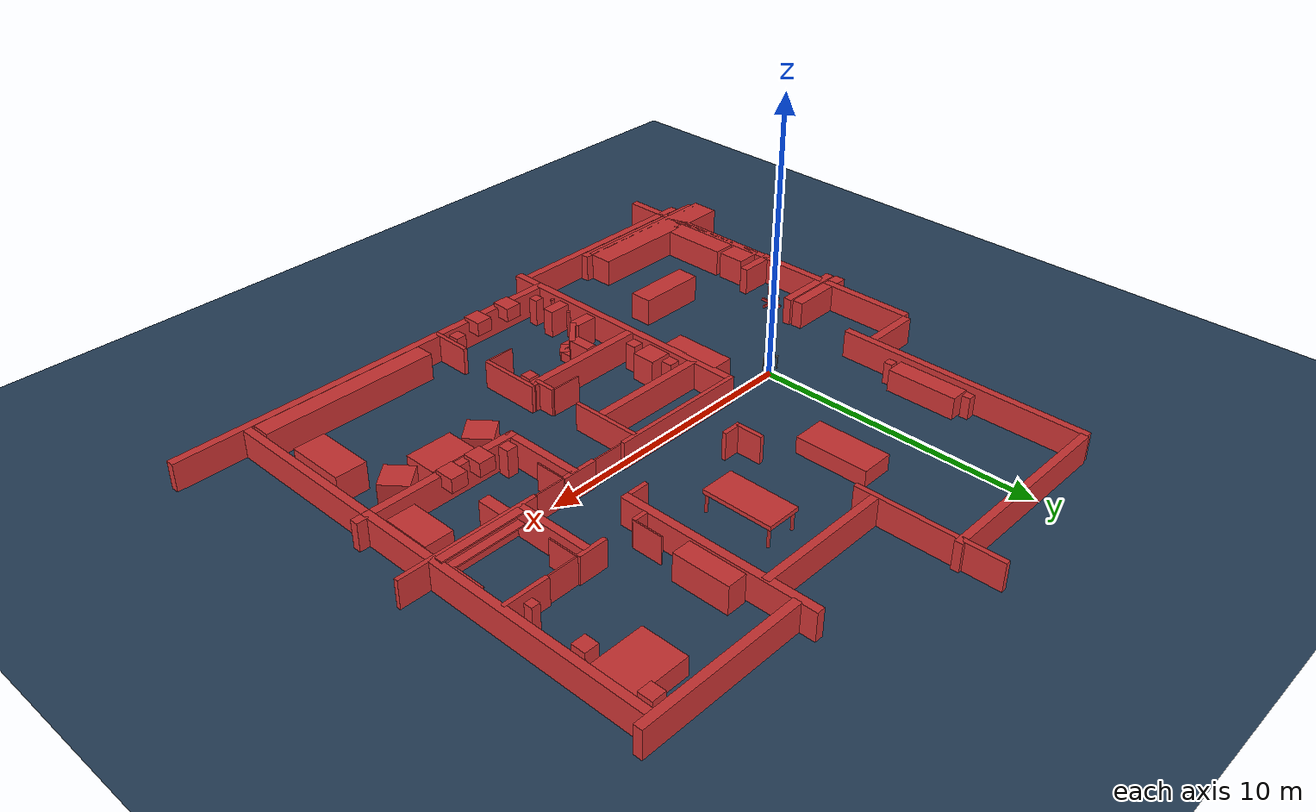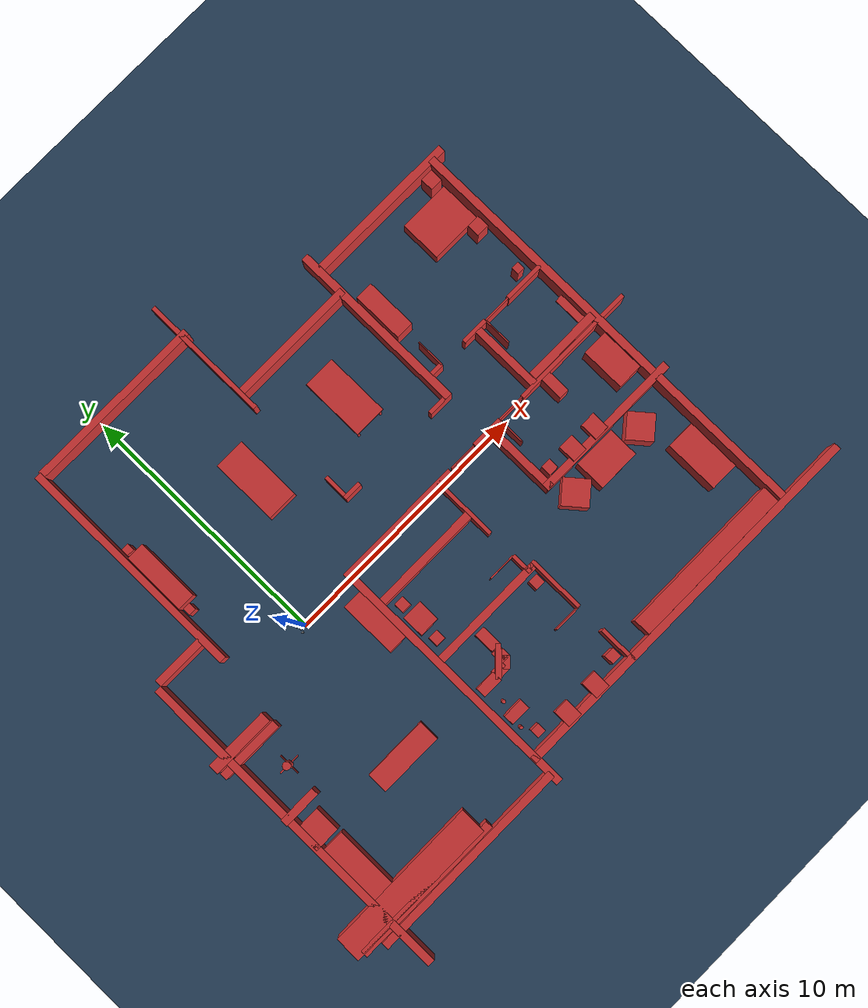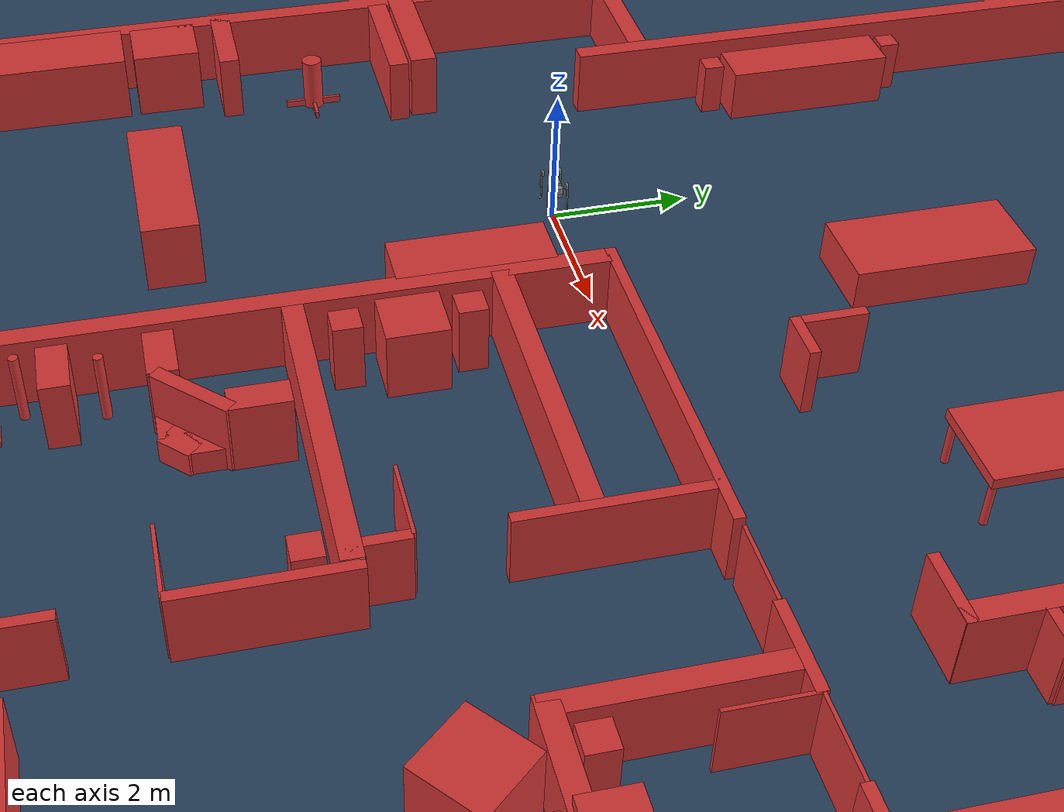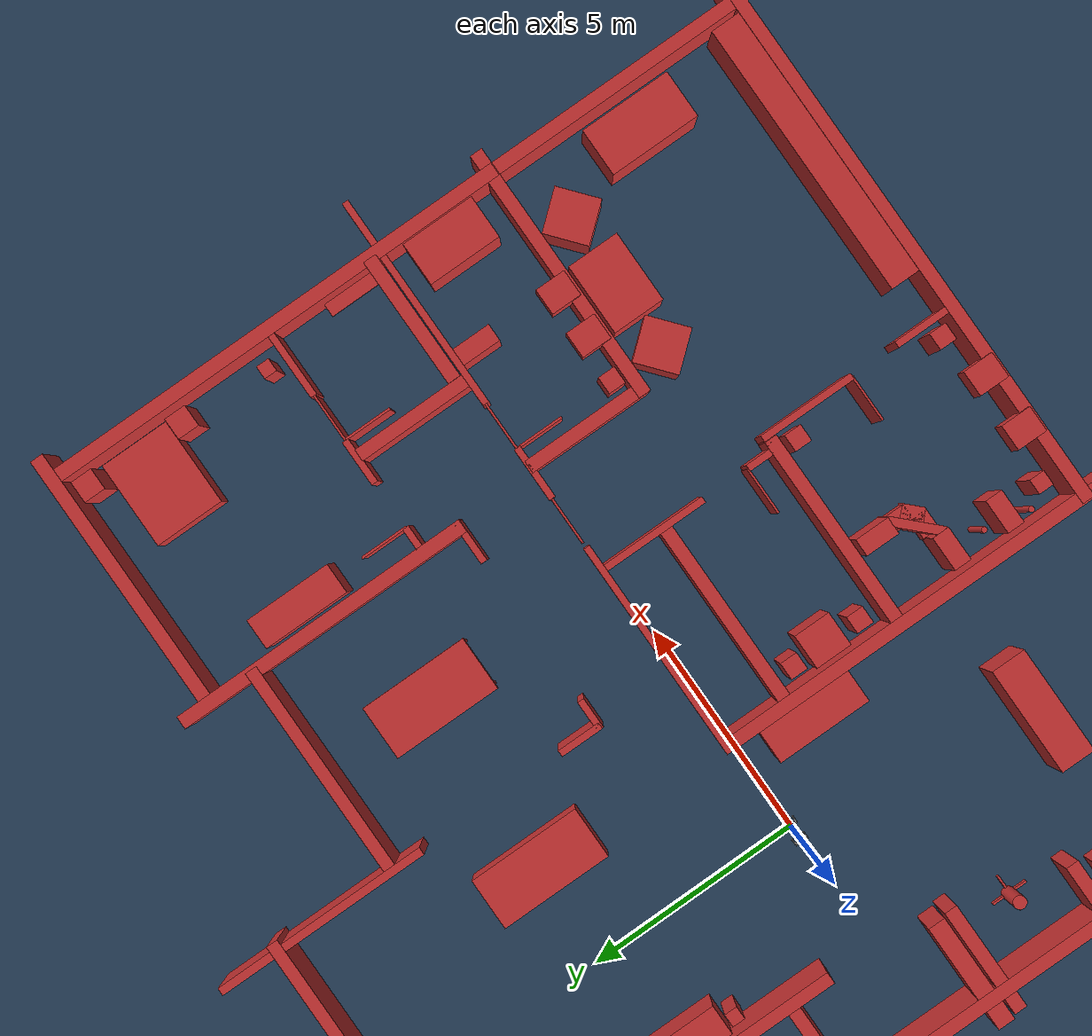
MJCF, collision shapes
<mujoco model="go2 scene">
  <include file="go2.xml" />

  <statistic center="0 0 0.1" extent="0.8" />

  <visual>
    <headlight diffuse="0.6 0.6 0.6" ambient="0.3 0.3 0.3" specular="0 0 0" />
    <rgba haze="0.15 0.25 0.35 1" />
    <global azimuth="-130" elevation="-20" />
    <map znear="0.01" zfar="100"/>
  </visual>

  <asset>
    <texture type="skybox" builtin="gradient" rgb1="0.3 0.5 0.7" rgb2="0 0 0" width="512" height="3072" />
    <texture type="2d" name="groundplane" builtin="checker" mark="edge" rgb1="0.2 0.3 0.4" rgb2="0.1 0.2 0.3" markrgb="0.8 0.8 0.8" width="300" height="300" />
    <material name="groundplane" texture="groundplane" texuniform="true" texrepeat="5 5" reflectance="0.2" />
  <hfield name="perlin_hfield" size="1.0 0.75 0.2 0.2" file="../height_field.png" /><hfield name="image_hfield" size="1.0 1.0 0.02 0.1" file="../unitree_hfield.png" /></asset>

  <worldbody>
    <light pos="0 0 1.5" dir="0 0 -1" directional="true" />
    <geom name="floor" pos="0 0.0 0.01" size="0 0 0.05" type="plane" material="groundplane" />
<geom name="ps_Cube" type="box" size="0.135 4.5 0.5" pos="-2.74 5.61 0.51" quat="1.0 0.0 0.0 0.0" rgba="0.8 0.2 0.2 1"/>
<geom name="ps_Cube3" type="box" size="0.135 3.5 0.5" pos="0.86 10.03 0.51" quat="0.707107 0.0 0.0 -0.707107" rgba="0.8 0.2 0.2 1"/>
<geom name="ps_Cube4" type="box" size="0.09 2.5 0.5" pos="4.15 8.95 0.51" quat="0.0 0.0 0.0 -1.0" rgba="0.8 0.2 0.2 1"/>
<geom name="ps_Cube5" type="box" size="0.135 2.5 0.5" pos="6.66 7.19 0.51" quat="0.707107 0.0 0.0 -0.707107" rgba="0.8 0.2 0.2 1"/>
<geom name="ps_Cube6" type="box" size="0.15 3.5 0.5" pos="9.09 5.47 0.51" quat="0.0 0.0 0.0 -1.0" rgba="0.8 0.2 0.2 1"/>
<geom name="ps_Cube7" type="box" size="0.15 3.0 0.5" pos="12.19 8.29 0.51" quat="0.707107 0.0 0.0 0.707107" rgba="0.8 0.2 0.2 1"/>
<geom name="ps_Cube8" type="box" size="0.15 5.5 0.5" pos="14.65 2.77 0.51" quat="1.0 0.0 0.0 0.0" rgba="0.8 0.2 0.2 1"/>
<geom name="ps_Cube9" type="box" size="0.075 0.5 0.5" pos="8.73 2.04 0.51" quat="0.707107 0.0 0.0 -0.707107" rgba="0.8 0.2 0.2 1"/>
<geom name="ps_Cube10" type="box" size="0.075 0.25 0.5" pos="9.47 2.95 0.51" quat="0.707107 0.0 0.0 -0.707107" rgba="0.8 0.2 0.2 1"/>
<geom name="ps_Cube11" type="box" size="0.075 0.525 0.5" pos="11.35 2.94 0.51" quat="0.707107 0.0 0.0 -0.707107" rgba="0.8 0.2 0.2 1"/>
<geom name="ps_Cube12" type="box" size="0.075 0.8 0.5" pos="13.79 2.94 0.51" quat="0.707107 0.0 0.0 -0.707107" rgba="0.8 0.2 0.2 1"/>
<geom name="ps_Cube13" type="box" size="0.075 2.5 0.5" pos="13.35 0.16 0.51" quat="0.707107 0.0 0.0 -0.707107" rgba="0.8 0.2 0.2 1"/>
<geom name="ps_Cube14" type="box" size="0.14 1.35 0.5" pos="11.47 1.54 0.51" quat="0.0 0.0 0.0 -1.0" rgba="0.8 0.2 0.2 1"/>
<geom name="ps_Cube15" type="box" size="0.145 3.0 0.5" pos="12.15 -2.6 0.51" quat="0.707107 0.0 0.0 -0.707107" rgba="0.8 0.2 0.2 1"/>
<geom name="ps_Cube16" type="box" size="0.145 7.5 0.5" pos="9.71 -8.76 0.51" quat="0.707107 0.0 0.0 -0.707107" rgba="0.8 0.2 0.2 1"/>
<geom name="ps_Cube17" type="box" size="0.145 3.0 0.5" pos="14.65 -5.7 0.51" quat="0.0 0.0 0.0 -1.0" rgba="0.8 0.2 0.2 1"/>
<geom name="ps_Cube18" type="box" size="0.075 0.625 0.5" pos="9.12 0.16 0.51" quat="0.707107 0.0 0.0 -0.707107" rgba="0.8 0.2 0.2 1"/>
<geom name="ps_Cube19" type="box" size="0.145 1.45 0.5" pos="9.29 -1.26 0.51" quat="0.0 0.0 0.0 -1.0" rgba="0.8 0.2 0.2 1"/>
<geom name="ps_Cube20" type="box" size="0.025 0.55 0.5" pos="9.74 -0.39 0.51" quat="0.0 0.0 0.0 -1.0" rgba="0.8 0.2 0.2 1"/>
<geom name="ps_Cube21" type="box" size="0.025 0.55 0.5" pos="9.725 3.48 0.51" quat="0.0 0.0 0.0 -1.0" rgba="0.8 0.2 0.2 1"/>
<geom name="ps_Cube22" type="box" size="0.025 0.55 0.5" pos="7.94 0.17 0.51" quat="0.707107 0.0 0.0 -0.707107" rgba="0.8 0.2 0.2 1"/>
<geom name="ps_Cube23" type="box" size="0.075 2.55 0.5" pos="4.73 0.16 0.51" quat="0.707107 0.0 0.0 -0.707107" rgba="0.8 0.2 0.2 1"/>
<geom name="ps_Cube24" type="box" size="0.145 5.0 0.5" pos="2.32 -4.89 0.51" quat="1.0 0.0 0.0 -0.0" rgba="0.8 0.2 0.2 1"/>
<geom name="ps_Cube25" type="box" size="0.145 6.5 0.5" pos="-4.98 -4.51 0.51" quat="1.0 0.0 0.0 -0.0" rgba="0.8 0.2 0.2 1"/>
<geom name="ps_Cube26" type="box" size="0.145 1.0 0.5" pos="-3.84 2.11 0.51" quat="0.707107 0.0 0.0 -0.707107" rgba="0.8 0.2 0.2 1"/>
<geom name="ps_Cube27" type="box" size="0.145 4.0 0.5" pos="-1.68 -9.51 0.51" quat="0.707107 0.0 0.0 0.707107" rgba="0.8 0.2 0.2 1"/>
<geom name="ps_Cube28" type="box" size="0.145 3.0 0.5" pos="-3.35 -9.19 0.51" quat="0.707107 0.0 0.0 0.707107" rgba="0.8 0.2 0.2 1"/>
<geom name="ps_Cube29" type="box" size="0.5 3.0 0.5" pos="-3.63 -8.71 0.51" quat="0.707107 0.0 0.0 0.707107" rgba="0.8 0.2 0.2 1"/>
<geom name="ps_Cube30" type="box" size="0.5 1.5 0.5" pos="-4.51 -7.31 0.51" quat="1.0 0.0 0.0 -0.0" rgba="0.8 0.2 0.2 1"/>
<geom name="ps_Cube31" type="box" size="0.5 0.5 0.5" pos="-4.53 -5.17 0.51" quat="1.0 0.0 0.0 -0.0" rgba="0.8 0.2 0.2 1"/>
<geom name="ps_Cube32" type="box" size="0.75 0.15 0.5" pos="-4.42 -4.23 0.51" quat="1.0 0.0 0.0 -0.0" rgba="0.8 0.2 0.2 1"/>
<geom name="ps_Cube33" type="box" size="1.25 0.15 0.5" pos="-4.25 -1.68 0.51" quat="1.0 0.0 0.0 -0.0" rgba="0.8 0.2 0.2 1"/>
<geom name="ps_Cube34" type="box" size="1.25 0.2 0.5" pos="-4.32 -1.28 0.51" quat="1.0 0.0 0.0 -0.0" rgba="0.8 0.2 0.2 1"/>
<geom name="ps_Cube35" type="box" size="1.25 0.4 0.5" pos="-0.78 -5.54 0.51" quat="1.0 0.0 0.0 -0.0" rgba="0.8 0.2 0.2 1"/>
<geom name="ps_Cube36" type="box" size="1.1 0.4 0.5" pos="1.82 -1.66 0.51" quat="0.707107 0.0 0.0 0.707107" rgba="0.8 0.2 0.2 1"/>
<geom name="ps_Cube37" type="box" size="0.075 1.25 0.5" pos="6.71 -1.1 0.51" quat="0.0 0.0 0.0 -1.0" rgba="0.8 0.2 0.2 1"/>
<geom name="ps_Cube38" type="box" size="0.075 0.4 0.5" pos="6.71 -3.85 0.51" quat="0.0 0.0 0.0 -1.0" rgba="0.8 0.2 0.2 1"/>
<geom name="ps_Cube39" type="box" size="0.075 1.115 0.5" pos="7.03 -5.15 0.51" quat="0.0 0.0 0.0 -1.0" rgba="0.8 0.2 0.2 1"/>
<geom name="ps_Cube40" type="box" size="0.1 0.1 0.5" pos="6.87 -4.13 0.51" quat="0.0 0.0 0.0 -1.0" rgba="0.8 0.2 0.2 1"/>
<geom name="ps_Cube41" type="box" size="0.145 2.25 0.5" pos="4.69 -4.17 0.51" quat="0.707107 0.0 0.0 -0.707107" rgba="0.8 0.2 0.2 1"/>
<geom name="ps_Cube42" type="box" size="0.025 0.55 0.5" pos="6.16 -3.44 0.51" quat="0.707107 0.0 0.0 -0.707107" rgba="0.8 0.2 0.2 1"/>
<geom name="ps_Cube43" type="box" size="0.025 0.55 0.5" pos="6.49 -6.26 0.51" quat="0.707107 0.0 0.0 -0.707107" rgba="0.8 0.2 0.2 1"/>
<geom name="ps_Cube44" type="box" size="0.145 2.15 0.5" pos="4.49 -1.37 0.51" quat="0.707107 0.0 0.0 -0.707107" rgba="0.8 0.2 0.2 1"/>
<geom name="ps_Cube45" type="box" size="0.025 0.55 0.5" pos="11.89 2.37 0.51" quat="0.0 0.0 0.0 -1.0" rgba="0.8 0.2 0.2 1"/>
<geom name="ps_Cube46" type="box" size="0.15 1.5 0.025" pos="13.11 0.41 0.61" quat="0.707107 0.0 0.0 -0.707107" rgba="0.8 0.2 0.2 1"/>
<geom name="ps_Cube47" type="box" size="0.15 1.5 0.025" pos="13.11 0.41 1.05" quat="0.707107 0.0 0.0 -0.707107" rgba="0.8 0.2 0.2 1"/>
<geom name="ps_Cube48" type="box" size="0.15 0.6 0.025" pos="14.31 1.12 0.61" quat="1.0 0.0 0.0 -0.0" rgba="0.8 0.2 0.2 1"/>
<geom name="ps_Cube52" type="box" size="0.35 1.25 0.4" pos="-2.25 4.68 0.39" quat="1.0 0.0 0.0 0.0" rgba="0.8 0.2 0.2 1"/>
<geom name="ps_Cube53" type="box" size="0.15 0.15 0.4" pos="-2.39 6.14 0.39" quat="1.0 0.0 0.0 0.0" rgba="0.8 0.2 0.2 1"/>
<geom name="ps_Cube54" type="box" size="0.15 0.15 0.4" pos="-2.34 3.19 0.39" quat="1.0 0.0 0.0 0.0" rgba="0.8 0.2 0.2 1"/>
<geom name="ps_Cube59" type="box" size="0.6 1.3 0.3" pos="2.4 4.74 0.32" quat="1.0 0.0 0.0 0.0" rgba="0.8 0.2 0.2 1"/>
<geom name="ps_Cube60" type="box" size="0.075 0.5 0.5" pos="4.15 2.51 0.51" quat="1.0 0.0 0.0 0.0" rgba="0.8 0.2 0.2 1"/>
<geom name="ps_Cube61" type="box" size="0.075 0.36 0.5" pos="4.44 2.05 0.51" quat="0.707107 0.0 0.0 0.707107" rgba="0.8 0.2 0.2 1"/>
<geom name="ps_Cube62" type="box" size="0.625 1.25 0.075" pos="6.58 4.55 0.78" quat="1.0 0.0 0.0 0.0" rgba="0.8 0.2 0.2 1"/>
<geom name="ps_Cube69" type="box" size="0.35 1.0 0.5" pos="9.68 5.68 0.51" quat="0.0 0.0 0.0 -1.0" rgba="0.8 0.2 0.2 1"/>
<geom name="ps_Cube70" type="box" size="0.25 0.25 0.5" pos="14.09 5.45 0.51" quat="0.0 0.0 0.0 -1.0" rgba="0.8 0.2 0.2 1"/>
<geom name="ps_Cube71" type="box" size="0.25 0.25 0.5" pos="14.13 7.75 0.51" quat="0.0 0.0 0.0 -1.0" rgba="0.8 0.2 0.2 1"/>
<geom name="ps_Cube72" type="box" size="0.15 0.15 0.5" pos="13.99 3.41 0.51" quat="0.0 0.0 0.0 -1.0" rgba="0.8 0.2 0.2 1"/>
<geom name="ps_Cube73" type="box" size="1.0 0.8 0.35" pos="13.36 6.57 0.3" quat="0.0 0.0 0.0 -1.0" rgba="0.8 0.2 0.2 1"/>
<geom name="ps_Cube74" type="box" size="0.5 0.85 0.5" pos="13.97 -1.16 0.51" quat="0.0 0.0 0.0 -1.0" rgba="0.8 0.2 0.2 1"/>
<geom name="ps_Cube75" type="box" size="0.2 0.45 0.5" pos="11.94 -0.36 0.51" quat="0.0 0.0 0.0 -1.0" rgba="0.8 0.2 0.2 1"/>
<geom name="ps_Cube76" type="box" size="0.3 0.35 0.25" pos="11.84 -2.33 0.89" quat="0.0 0.0 0.0 -1.0" rgba="0.8 0.2 0.2 1"/>
<geom name="ps_Cube77" type="box" size="0.3 0.35 0.25" pos="10.77 -2.33 0.89" quat="0.0 0.0 0.0 -1.0" rgba="0.8 0.2 0.2 1"/>
<geom name="ps_Cube78" type="box" size="0.2 0.2 0.5" pos="9.77 -2.21 0.5" quat="0.0 0.0 0.0 -1.0" rgba="0.8 0.2 0.2 1"/>
<geom name="ps_Cube79" type="box" size="0.5 0.5 0.5" pos="9.77 -3.46 0.5" quat="0.90559 0.0 0.0 -0.424155" rgba="0.8 0.2 0.2 1"/>
<geom name="ps_Cube80" type="box" size="0.5 0.5 0.5" pos="12.97 -3.46 0.5" quat="0.90559 0.0 0.0 -0.424155" rgba="0.8 0.2 0.2 1"/>
<geom name="ps_Cube81" type="box" size="0.825 0.6 0.5" pos="11.34 -3.41 0.5" quat="1.0 0.0 0.0 0.0" rgba="0.8 0.2 0.2 1"/>
<geom name="ps_Cube82" type="box" size="0.55 1.05 0.5" pos="13.72 -5.68 0.5" quat="1.0 0.0 0.0 0.0" rgba="0.8 0.2 0.2 1"/>
<geom name="ps_Cube83" type="box" size="3.2 0.35 0.5" pos="11.21 -8.29 0.5" quat="1.0 0.0 0.0 0.0" rgba="0.8 0.2 0.2 1"/>
<geom name="ps_Cube84" type="box" size="0.075 0.75 0.5" pos="7.03 -8.12 0.51" quat="0.0 0.0 0.0 -1.0" rgba="0.8 0.2 0.2 1"/>
<geom name="ps_Cube85" type="box" size="0.3 0.35 0.25" pos="5.51 -8.48 0.89" quat="0.0 0.0 0.0 -1.0" rgba="0.8 0.2 0.2 1"/>
<geom name="ps_Cube86" type="box" size="0.3 0.35 0.25" pos="4.17 -8.48 0.89" quat="0.0 0.0 0.0 -1.0" rgba="0.8 0.2 0.2 1"/>
<geom name="ps_Cube87" type="box" size="0.2 0.2 0.5" pos="2.88 -1.91 0.5" quat="0.0 0.0 0.0 -1.0" rgba="0.8 0.2 0.2 1"/>
<geom name="ps_Cube88" type="box" size="0.2 0.2 0.5" pos="2.88 -3.55 0.5" quat="0.0 0.0 0.0 -1.0" rgba="0.8 0.2 0.2 1"/>
<geom name="ps_Cube89" type="box" size="0.4 0.425 0.5" pos="2.97 -2.69 0.5" quat="0.0 0.0 0.0 -1.0" rgba="0.8 0.2 0.2 1"/>
<geom name="ps_Cube90" type="box" size="0.2 0.2 0.5" pos="6.63 -8.24 0.5" quat="0.0 0.0 0.0 -1.0" rgba="0.8 0.2 0.2 1"/>
<geom name="ps_Cube91" type="box" size="0.2 0.2 0.5" pos="6.63 -4.64 0.5" quat="0.0 0.0 0.0 -1.0" rgba="0.8 0.2 0.2 1"/>
<geom name="ps_Cube92" type="box" size="0.175 0.175 0.5" pos="3.05 -8.18 0.5" quat="0.0 0.0 0.0 -1.0" rgba="0.8 0.2 0.2 1"/>
<geom name="ps_Cube93" type="box" size="0.4 0.2 0.5" pos="2.99 -7.23 0.5" quat="0.0 0.0 0.0 -1.0" rgba="0.8 0.2 0.2 1"/>
<geom name="ps_Cylinder"  type="cylinder" size="0.065 0.5" pos="2.72 -7.7 0.5" rgba="0.8 0.2 0.2 1"/>
<geom name="ps_Cylinder2"  type="cylinder" size="0.065 0.5" pos="2.93 -6.67 0.5" rgba="0.8 0.2 0.2 1"/>
<geom name="ps_Cube94" type="box" size="0.4 0.2 0.5" pos="2.99 -5.91 0.5" quat="0.0 0.0 0.0 -1.0" rgba="0.8 0.2 0.2 1"/>
<geom name="ps_Cube95" type="box" size="0.4 0.2 0.5" pos="4.06 -4.81 0.5" quat="0.707107 0.0 0.0 -0.707107" rgba="0.8 0.2 0.2 1"/>
<geom name="ps_Cube96" type="box" size="0.1 0.6 0.5" pos="3.78 -5.59 0.5" quat="0.92388 0.0 0.0 -0.382683" rgba="0.8 0.2 0.2 1"/>
<geom name="ps_Cube97" type="box" size="0.2 0.25 0.2" pos="3.93 -5.78 0.14" quat="0.92388 0.0 0.0 -0.382683" rgba="0.8 0.2 0.2 1"/>
<geom name="ps_Cube98" type="box" size="0.2 0.25 0.2" pos="4.02 -5.51 0.14" quat="1.0 0.0 0.0 0.0" rgba="0.8 0.2 0.2 1"/>
<geom name="ps_Cube99" type="box" size="0.2 0.25 0.2" pos="3.62 -5.88 0.14" quat="0.707107 0.0 0.0 0.707107" rgba="0.8 0.2 0.2 1"/>
<geom name="ps_Cylinder27"  type="cylinder" size="0.05 0.35" pos="7.11 3.38 0.39" rgba="0.8 0.2 0.2 1"/>
<geom name="ps_Cylinder28"  type="cylinder" size="0.05 0.35" pos="6.04 3.38 0.39" rgba="0.8 0.2 0.2 1"/>
<geom name="ps_Cylinder29"  type="cylinder" size="0.05 0.35" pos="6.04 5.69 0.39" rgba="0.8 0.2 0.2 1"/>
<geom name="ps_Cylinder30"  type="cylinder" size="0.05 0.35" pos="7.12 5.69 0.39" rgba="0.8 0.2 0.2 1"/>
<geom name="ps_Cylinder31"  type="cylinder" size="0.15 0.4" pos="-3.77 -2.94 0.4" rgba="0.8 0.2 0.2 1"/>
<geom name="ps_Cube100" type="box" size="0.425 0.025 0.05" pos="-3.75 -2.95 0.06" quat="1.0 0.0 0.0 -0.0" rgba="0.8 0.2 0.2 1"/>
<geom name="ps_Cube101" type="box" size="0.425 0.025 0.05" pos="-3.75 -2.95 0.06" quat="0.707107 0.0 0.0 -0.707107" rgba="0.8 0.2 0.2 1"/>
<geom name="ps_Cube49" type="box" size="0.025 0.55 0.5" pos="10.3 0.17 0.51" quat="0.707107 0.0 0.0 -0.707107" rgba="0.8 0.2 0.2 1"/>
<geom name="ps_Cube50" type="box" size="0.025 0.55 0.5" pos="12.44 2.93 0.51" quat="0.707107 0.0 0.0 -0.707107" rgba="0.8 0.2 0.2 1"/>
    </worldbody>
</mujoco>

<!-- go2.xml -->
<mujoco model="go2">
  <compiler angle="radian" meshdir="assets" autolimits="true" />

  <option cone="elliptic" impratio="100" />

  <default>
    <default class="go2">
      <geom friction="0.4" margin="0.001" condim="1"/>
      <joint axis="0 1 0" damping="0.1" armature="0.01" frictionloss="0.2"/>
      <motor ctrlrange="-23.7 23.7"/>
      <default class="abduction">
        <joint axis="1 0 0" range="-1.0472 1.0472"/>
      </default>
      <default class="hip">
        <default class="front_hip">
          <joint range="-1.5708 3.4907"/>
        </default>
        <default class="back_hip">
          <joint range="-0.5236 4.5379"/>
        </default>
      </default>
      <default class="knee">
        <joint range="-2.7227 -0.83776"/>
        <motor ctrlrange="-45.43 45.43"/>
      </default>
      <default class="visual">
        <geom type="mesh" contype="0" conaffinity="0" group="2"/>
      </default>
      <default class="collision">
        <geom group="3"/>
        <default class="foot">
          <geom size="0.022" pos="-0.002 0 -0.213" priority="1" condim="6"
            friction="0.4 0.02 0.01"/>
        </default>
      </default>
    </default>
  </default>

  <asset>
    <material name="metal" rgba=".9 .95 .95 1" />
    <material name="black" rgba="0 0 0 1" />
    <material name="white" rgba="1 1 1 1" />
    <material name="gray" rgba="0.671705 0.692426 0.774270 1" />

    <mesh name="base_0_LINK" file="base_0_LINK.obj" />
    <mesh name="base_1_LINK" file="base_1_LINK.obj" />
    <mesh name="base_2_LINK" file="base_2_LINK.obj" />
    <mesh name="base_3_LINK" file="base_3_LINK.obj" />
    <mesh name="base_4_BASE_LINK" file="base_4_BASE_LINK.obj" />

    <mesh name="FL_hip_0_LINK" file="hip_0_LINK.obj" />
    <mesh name="FL_hip_1_LINK" file="hip_1_LINK.obj" />
    <mesh name="FR_hip_0_LINK" file="hip_0_LINK.obj" />
    <mesh name="FR_hip_1_LINK" file="hip_1_LINK.obj" />
    <mesh name="RL_hip_0_LINK" file="hip_0_LINK.obj" />
    <mesh name="RL_hip_1_LINK" file="hip_1_LINK.obj" />
    <mesh name="RR_hip_0_LINK" file="hip_0_LINK.obj" />
    <mesh name="RR_hip_1_LINK" file="hip_1_LINK.obj" />

    <mesh name="FL_thigh_0_LINK" file="thigh_0_LINK.obj" />
    <mesh name="FL_thigh_1_LINK" file="thigh_1_LINK.obj" />
    <mesh name="RL_thigh_0_LINK" file="thigh_0_LINK.obj" />
    <mesh name="RL_thigh_1_LINK" file="thigh_1_LINK.obj" />

    <mesh name="FR_thigh_mirror_0_LINK" file="thigh_mirror_0_LINK.obj" />
    <mesh name="FR_thigh_mirror_1_LINK" file="thigh_mirror_1_LINK.obj" />
    <mesh name="RR_thigh_mirror_0_LINK" file="thigh_mirror_0_LINK.obj" />
    <mesh name="RR_thigh_mirror_1_LINK" file="thigh_mirror_1_LINK.obj" />

    <mesh name="FL_calf_0_LINK" file="calf_0_LINK.obj" />
    <mesh name="FL_calf_1_LINK" file="calf_1_LINK.obj" />
    <mesh name="RL_calf_0_LINK" file="calf_0_LINK.obj" />
    <mesh name="RL_calf_1_LINK" file="calf_1_LINK.obj" />

    <mesh name="FR_calf_mirror_0_LINK" file="calf_mirror_0_LINK.obj" />
    <mesh name="FR_calf_mirror_1_LINK" file="calf_mirror_1_LINK.obj" />
    <mesh name="RR_calf_mirror_0_LINK" file="calf_mirror_0_LINK.obj" />
    <mesh name="RR_calf_mirror_1_LINK" file="calf_mirror_1_LINK.obj" />

    <mesh name="FL_foot_LINK" file="foot_LINK.obj" />
    <mesh name="FR_foot_LINK" file="foot_LINK.obj" />
    <mesh name="RL_foot_LINK" file="foot_LINK.obj" />
    <mesh name="RR_foot_LINK" file="foot_LINK.obj" />
  </asset>

  <worldbody>
    <body name="base_link" pos="0 0 0.65" childclass="go2">
      <inertial pos="0.021112 0 -0.005366" quat="-0.000543471 0.713435 -0.00173769 0.700719"
        mass="6.921"
        diaginertia="0.107027 0.0980771 0.0244531" />
      <freejoint />
      <geom mesh="base_0_LINK" material="black" class="visual" />
      <geom mesh="base_1_LINK" material="black" class="visual" />
      <geom mesh="base_2_LINK" material="black" class="visual" />
      <geom mesh="base_3_LINK" material="white" class="visual" />
      <geom mesh="base_4_BASE_LINK" material="gray" class="visual" />
      <geom size="0.1881 0.04675 0.057" type="box" class="collision" />
      <geom size="0.05 0.045" pos="0.285 0 0.01" type="cylinder" class="collision" />
      <geom size="0.047" pos="0.293 0 -0.06" class="collision" />
      <site name="imu" pos="-0.02557 0 0.04232" />

      <body name="FL_hip" pos="0.1934 0.0465 0">
        <inertial pos="-0.0054 0.00194 -0.000105" quat="0.497014 0.499245 0.505462 0.498237"
          mass="0.678"
          diaginertia="0.00088403 0.000596003 0.000479967" />
        <joint name="FL_hip_joint" class="abduction" />
        <geom mesh="FL_hip_0_LINK" material="metal" class="visual" />
        <geom mesh="FL_hip_1_LINK" material="gray" class="visual" />
        <geom size="0.046 0.02" pos="0 0.08 0" quat="1 1 0 0" type="cylinder" class="collision" />
        <body name="FL_thigh" pos="0 0.0955 0">
          <inertial pos="-0.00374 -0.0223 -0.0327" quat="0.829533 0.0847635 -0.0200632 0.551623"
            mass="1.152"
            diaginertia="0.00594973 0.00584149 0.000878787" />
          <joint name="FL_thigh_joint" class="front_hip" />
          <geom mesh="FL_thigh_0_LINK" material="metal" class="visual" />
          <geom mesh="FL_thigh_1_LINK" material="gray" class="visual" />
          <geom size="0.1065 0.01225 0.017" pos="0 0 -0.1065" quat="0.707107 0 0.707107 0"
            type="box" class="collision" />
          <body name="FL_calf" pos="0 0 -0.213">
            <inertial pos="0.00629595 -0.000622121 -0.141417"
              quat="0.710672 0.00154099 -0.00450087 0.703508"
              mass="0.241352" diaginertia="0.0014901 0.00146356 5.31397e-05" />
            <joint name="FL_calf_joint" class="knee" />
            <geom mesh="FL_calf_0_LINK" material="gray" class="visual" />
            <geom mesh="FL_calf_1_LINK" material="black" class="visual" />
            <geom size="0.012 0.06" pos="0.008 0 -0.06" quat="0.994493 0 -0.104807 0"
              type="cylinder" class="collision" />
            <geom size="0.011 0.0325" pos="0.02 0 -0.148" quat="0.999688 0 0.0249974 0"
              type="cylinder" class="collision" />
            <geom pos="0 0 -0.213" mesh="FL_foot_LINK" class="visual" material="black" />
            <geom name="FL" class="foot" />
            <body name="FL_foot" pos="0 0 -0.213" />
          </body>
        </body>
      </body>
      <body name="FR_hip" pos="0.1934 -0.0465 0">
        <inertial pos="-0.0054 -0.00194 -0.000105" quat="0.498237 0.505462 0.499245 0.497014"
          mass="0.678"
          diaginertia="0.00088403 0.000596003 0.000479967" />
        <joint name="FR_hip_joint" class="abduction" />
        <geom mesh="FR_hip_0_LINK" material="metal" class="visual" quat="4.63268e-05 1 0 0" />
        <geom mesh="FR_hip_1_LINK" material="gray" class="visual" quat="4.63268e-05 1 0 0" />
        <geom size="0.046 0.02" pos="0 -0.08 0" quat="0.707107 0.707107 0 0" type="cylinder"
          class="collision" />
        <body name="FR_thigh" pos="0 -0.0955 0">
          <inertial pos="-0.00374 0.0223 -0.0327" quat="0.551623 -0.0200632 0.0847635 0.829533"
            mass="1.152"
            diaginertia="0.00594973 0.00584149 0.000878787" />
          <joint name="FR_thigh_joint" class="front_hip" />
          <geom mesh="FR_thigh_mirror_0_LINK" material="metal" class="visual" />
          <geom mesh="FR_thigh_mirror_1_LINK" material="gray" class="visual" />
          <geom size="0.1065 0.01225 0.017" pos="0 0 -0.1065" quat="0.707107 0 0.707107 0"
            type="box" class="collision" />
          <body name="FR_calf" pos="0 0 -0.213">
            <inertial pos="0.00629595 0.000622121 -0.141417"
              quat="0.703508 -0.00450087 0.00154099 0.710672"
              mass="0.241352" diaginertia="0.0014901 0.00146356 5.31397e-05" />
            <joint name="FR_calf_joint" class="knee" />
            <geom mesh="FR_calf_mirror_0_LINK" material="gray" class="visual" />
            <geom mesh="FR_calf_mirror_1_LINK" material="black" class="visual" />
            <geom size="0.013 0.06" pos="0.01 0 -0.06" quat="0.995004 0 -0.0998334 0"
              type="cylinder" class="collision" />
            <geom size="0.011 0.0325" pos="0.02 0 -0.148" quat="0.999688 0 0.0249974 0"
              type="cylinder" class="collision" />
            <geom pos="0 0 -0.213" mesh="FR_foot_LINK" class="visual" material="black" />
            <geom name="FR" class="foot" />
            <body name="FR_foot" pos="0 0 -0.213" />
          </body>
        </body>
      </body>
      <body name="RL_hip" pos="-0.1934 0.0465 0">
        <inertial pos="0.0054 0.00194 -0.000105" quat="0.505462 0.498237 0.497014 0.499245"
          mass="0.678"
          diaginertia="0.00088403 0.000596003 0.000479967" />
        <joint name="RL_hip_joint" class="abduction" />
        <geom mesh="RL_hip_0_LINK" material="metal" class="visual" quat="4.63268e-05 0 1 0" />
        <geom mesh="RL_hip_1_LINK" material="gray" class="visual" quat="4.63268e-05 0 1 0" />
        <geom size="0.046 0.02" pos="0 0.08 0" quat="0.707107 0.707107 0 0" type="cylinder"
          class="collision" />
        <body name="RL_thigh" pos="0 0.0955 0">
          <inertial pos="-0.00374 -0.0223 -0.0327" quat="0.829533 0.0847635 -0.0200632 0.551623"
            mass="1.152"
            diaginertia="0.00594973 0.00584149 0.000878787" />
          <joint name="RL_thigh_joint" class="back_hip" />
          <geom mesh="RL_thigh_0_LINK" material="metal" class="visual" />
          <geom mesh="RL_thigh_1_LINK" material="gray" class="visual" />
          <geom size="0.1065 0.01225 0.017" pos="0 0 -0.1065" quat="0.707107 0 0.707107 0"
            type="box" class="collision" />
          <body name="RL_calf" pos="0 0 -0.213">
            <inertial pos="0.00629595 -0.000622121 -0.141417"
              quat="0.710672 0.00154099 -0.00450087 0.703508"
              mass="0.241352" diaginertia="0.0014901 0.00146356 5.31397e-05" />
            <joint name="RL_calf_joint" class="knee" />
            <geom mesh="RL_calf_0_LINK" material="gray" class="visual" />
            <geom mesh="RL_calf_1_LINK" material="black" class="visual" />
            <geom size="0.013 0.06" pos="0.01 0 -0.06" quat="0.995004 0 -0.0998334 0"
              type="cylinder" class="collision" />
            <geom size="0.011 0.0325" pos="0.02 0 -0.148" quat="0.999688 0 0.0249974 0"
              type="cylinder" class="collision" />
            <geom pos="0 0 -0.213" mesh="RL_foot_LINK" class="visual" material="black" />
            <geom name="RL" class="foot" />
            <body name="RL_foot" pos="0 0 -0.213" />
          </body>
        </body>
      </body>
      <body name="RR_hip" pos="-0.1934 -0.0465 0">
        <inertial pos="0.0054 -0.00194 -0.000105" quat="0.499245 0.497014 0.498237 0.505462"
          mass="0.678"
          diaginertia="0.00088403 0.000596003 0.000479967" />
        <joint name="RR_hip_joint" class="abduction" />
        <geom mesh="RR_hip_0_LINK" material="metal" class="visual"
          quat="2.14617e-09 4.63268e-05 4.63268e-05 -1" />
        <geom mesh="RR_hip_1_LINK" material="gray" class="visual"
          quat="2.14617e-09 4.63268e-05 4.63268e-05 -1" />
        <geom size="0.046 0.02" pos="0 -0.08 0" quat="0.707107 0.707107 0 0" type="cylinder"
          class="collision" />
        <body name="RR_thigh" pos="0 -0.0955 0">
          <inertial pos="-0.00374 0.0223 -0.0327" quat="0.551623 -0.0200632 0.0847635 0.829533"
            mass="1.152"
            diaginertia="0.00594973 0.00584149 0.000878787" />
          <joint name="RR_thigh_joint" class="back_hip" />
          <geom mesh="RR_thigh_mirror_0_LINK" material="metal" class="visual" />
          <geom mesh="RR_thigh_mirror_1_LINK" material="gray" class="visual" />
          <geom size="0.1065 0.01225 0.017" pos="0 0 -0.1065" quat="0.707107 0 0.707107 0"
            type="box" class="collision" />
          <body name="RR_calf" pos="0 0 -0.213">
            <inertial pos="0.00629595 0.000622121 -0.141417"
              quat="0.703508 -0.00450087 0.00154099 0.710672"
              mass="0.241352" diaginertia="0.0014901 0.00146356 5.31397e-05" />
            <joint name="RR_calf_joint" class="knee" />
            <geom mesh="RR_calf_mirror_0_LINK" material="gray" class="visual" />
            <geom mesh="RR_calf_mirror_1_LINK" material="black" class="visual" />
            <geom size="0.013 0.06" pos="0.01 0 -0.06" quat="0.995004 0 -0.0998334 0"
              type="cylinder" class="collision" />
            <geom size="0.011 0.0325" pos="0.02 0 -0.148" quat="0.999688 0 0.0249974 0"
              type="cylinder" class="collision" />
            <geom pos="0 0 -0.213" mesh="RR_foot_LINK" class="visual" material="black" />
            <geom name="RR" class="foot" />
            <body name="RR_foot" pos="0 0 -0.213" />
          </body>
        </body>
      </body>
    </body>
  </worldbody>

  <actuator>
    <motor class="abduction" name="FR_hip" joint="FR_hip_joint" />
    <motor class="hip" name="FR_thigh" joint="FR_thigh_joint" />
    <motor class="knee" name="FR_calf" joint="FR_calf_joint" />
    <motor class="abduction" name="FL_hip" joint="FL_hip_joint" />
    <motor class="hip" name="FL_thigh" joint="FL_thigh_joint" />
    <motor class="knee" name="FL_calf" joint="FL_calf_joint" />
    <motor class="abduction" name="RR_hip" joint="RR_hip_joint" />
    <motor class="hip" name="RR_thigh" joint="RR_thigh_joint" />
    <motor class="knee" name="RR_calf" joint="RR_calf_joint" />
    <motor class="abduction" name="RL_hip" joint="RL_hip_joint" />
    <motor class="hip" name="RL_thigh" joint="RL_thigh_joint" />
    <motor class="knee" name="RL_calf" joint="RL_calf_joint" />
  </actuator>

  <sensor>
    <jointpos name="FR_hip_pos" joint="FR_hip_joint" />
    <jointpos name="FR_thigh_pos" joint="FR_thigh_joint" />
    <jointpos name="FR_calf_pos" joint="FR_calf_joint" />
    <jointpos name="FL_hip_pos" joint="FL_hip_joint" />
    <jointpos name="FL_thigh_pos" joint="FL_thigh_joint" />
    <jointpos name="FL_calf_pos" joint="FL_calf_joint" />
    <jointpos name="RR_hip_pos" joint="RR_hip_joint" />
    <jointpos name="RR_thigh_pos" joint="RR_thigh_joint" />
    <jointpos name="RR_calf_pos" joint="RR_calf_joint" />
    <jointpos name="RL_hip_pos" joint="RL_hip_joint" />
    <jointpos name="RL_thigh_pos" joint="RL_thigh_joint" />
    <jointpos name="RL_calf_pos" joint="RL_calf_joint" />

    <jointvel name="FR_hip_vel" joint="FR_hip_joint" />
    <jointvel name="FR_thigh_vel" joint="FR_thigh_joint" />
    <jointvel name="FR_calf_vel" joint="FR_calf_joint" />
    <jointvel name="FL_hip_vel" joint="FL_hip_joint" />
    <jointvel name="FL_thigh_vel" joint="FL_thigh_joint" />
    <jointvel name="FL_calf_vel" joint="FL_calf_joint" />
    <jointvel name="RR_hip_vel" joint="RR_hip_joint" />
    <jointvel name="RR_thigh_vel" joint="RR_thigh_joint" />
    <jointvel name="RR_calf_vel" joint="RR_calf_joint" />
    <jointvel name="RL_hip_vel" joint="RL_hip_joint" />
    <jointvel name="RL_thigh_vel" joint="RL_thigh_joint" />
    <jointvel name="RL_calf_vel" joint="RL_calf_joint" />

    <jointactuatorfrc name="FR_hip_torque" joint="FR_hip_joint" noise="0.01" />
    <jointactuatorfrc name="FR_thigh_torque" joint="FR_thigh_joint" noise="0.01" />
    <jointactuatorfrc name="FR_calf_torque" joint="FR_calf_joint" noise="0.01" />
    <jointactuatorfrc name="FL_hip_torque" joint="FL_hip_joint" noise="0.01" />
    <jointactuatorfrc name="FL_thigh_torque" joint="FL_thigh_joint" noise="0.01" />
    <jointactuatorfrc name="FL_calf_torque" joint="FL_calf_joint" noise="0.01" />
    <jointactuatorfrc name="RR_hip_torque" joint="RR_hip_joint" noise="0.01" />
    <jointactuatorfrc name="RR_thigh_torque" joint="RR_thigh_joint" noise="0.01" />
    <jointactuatorfrc name="RR_calf_torque" joint="RR_calf_joint" noise="0.01" />
    <jointactuatorfrc name="RL_hip_torque" joint="RL_hip_joint" noise="0.01" />
    <jointactuatorfrc name="RL_thigh_torque" joint="RL_thigh_joint" noise="0.01" />
    <jointactuatorfrc name="RL_calf_torque" joint="RL_calf_joint" noise="0.01" />

    <framequat name="imu_quat" objtype="site" objname="imu" />
    <gyro name="imu_gyro" site="imu" />
    <accelerometer name="imu_acc" site="imu" />

    <framepos name="frame_pos" objtype="site" objname="imu" />
    <framelinvel name="frame_vel" objtype="site" objname="imu" />
  </sensor>

</mujoco>
